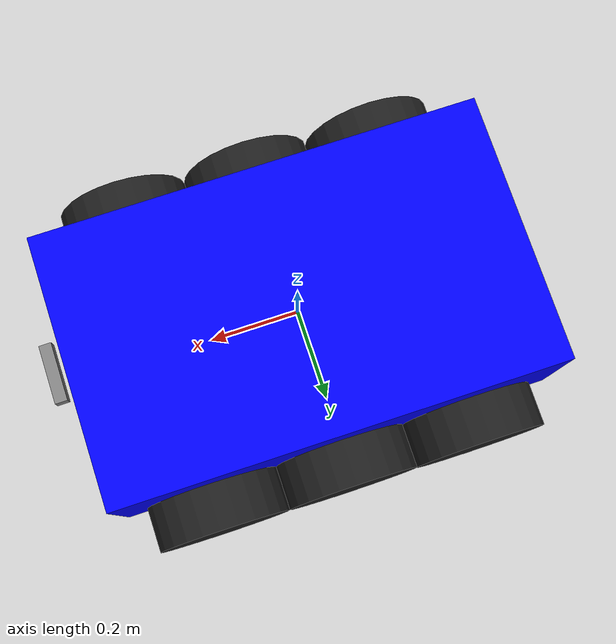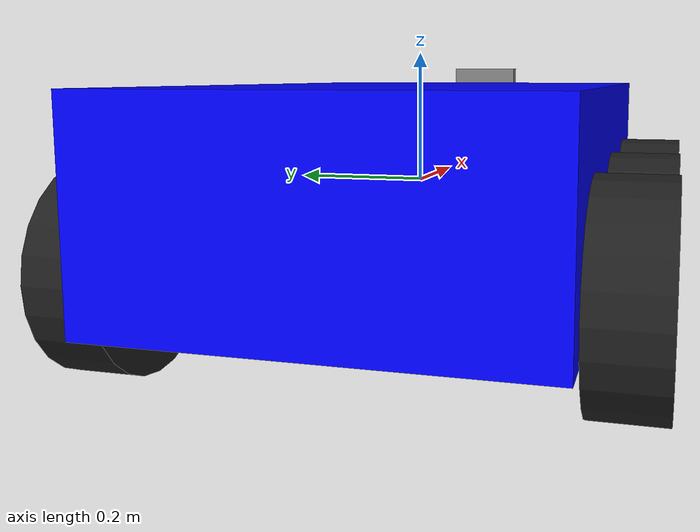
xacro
<?xml version="1.0"?>
<robot name="differential_drive_robot" xmlns:xacro="http://www.ros.org/wiki/xacro">

  <xacro:property name="body_link_x_dim" value="1"/>
  <xacro:property name="body_link_y_dim" value="0.6"/>
  <xacro:property name="body_link_z_dim" value="0.3"/>

  <xacro:property name="wheel_link_radius" value="0.15"/>
  <xacro:property name="wheel_link_length" value="0.1"/>
  <xacro:property name="wheel_link_z_location" value="-0.1"/>

  <xacro:property name="body_density" value="2710.0"/>
  <xacro:property name="wheel_density" value="2710.0"/>
  <xacro:property name="pi_const" value="3.14159265"/>

  <xacro:property name="body_mass" value="${body_density * pi_const * body_link_x_dim * body_link_y_dim * body_link_z_dim}"/>
  <xacro:property name="wheel_mass" value="${wheel_density * pi_const * wheel_link_radius * wheel_link_radius * wheel_link_length}"/>

  <xacro:property name="Iz_wheel" value="${0.5 * wheel_mass * wheel_link_radius * wheel_link_radius}" />
  <xacro:property name="I_wheel" value="${(1.0/12.0) * wheel_mass * (3.0 * wheel_link_radius * wheel_link_radius + wheel_link_length * wheel_link_length)}" />

  <xacro:macro name="inertia_wheel">
    <inertial>
      <origin rpy="0 0 0" xyz="0 0 0"/>
      <mass value="${wheel_mass}"/>
      <inertia ixx="${I_wheel}" ixy="0.0" ixz="0.0" iyy="${I_wheel}" iyz="0.0" izz="${Iz_wheel}"/>
    </inertial>
  </xacro:macro>

  <material name="blue">
    <color rgba="0 0 1 1"/>
  </material>

  <!-- Include Gazebo configurations -->
  <xacro:include filename="$(find mobile_dd_robot)/model/robot.gazebo"/>

  <!-- Include RealSense D455 camera macro -->
  <xacro:include filename="$(find mobile_dd_robot)/model/camera.xacro"/>

  <link name="body_link">
    <visual>
      <geometry>
        <box size="${body_link_x_dim} ${body_link_y_dim} ${body_link_z_dim}"/>
      </geometry>
      <origin rpy="0 0 0" xyz="0 0 0"/>
      <material name="blue"/> </visual>
    <collision>
      <geometry>
        <box size="${body_link_x_dim} ${body_link_y_dim} ${body_link_z_dim}"/>
      </geometry>
      <origin rpy="0 0 0" xyz="0 0 0"/>
    </collision>
    <inertial>
      <origin rpy="0 0 0" xyz="0 0 0"/>
      <mass value="${body_mass}"/>
      <inertia
        ixx="${(1/12)*body_mass*(body_link_y_dim*body_link_y_dim+body_link_z_dim*body_link_z_dim)}"
        ixy="0" ixz="0"
        iyy="${(1/12)*body_mass*(body_link_x_dim*body_link_x_dim+body_link_z_dim*body_link_z_dim)}"
        iyz="0"
        izz="${(1/12)*body_mass*(body_link_x_dim*body_link_x_dim+body_link_y_dim*body_link_y_dim)}"
      />
    </inertial>
  </link>

  <joint name="left_wheel_1_joint" type="continuous">
    <parent link="body_link"/>
    <child link="left_wheel_1_link"/>
    <origin xyz="-0.3 ${-body_link_y_dim/2 - wheel_link_length/2} ${wheel_link_z_location}" rpy="0 0 0"/>
    <axis xyz="0 1 0"/>
    <limit effort="1000" velocity="1000"/>
    <dynamics damping="1.0" friction="1.0"/>
  </joint>

  <link name="left_wheel_1_link">
    <visual>
      <origin rpy="1.570795 0 0" xyz="0 0 0"/>
      <geometry>
        <cylinder length="${wheel_link_length}" radius="${wheel_link_radius}"/>
      </geometry>
    </visual>
    <collision>
      <origin rpy="1.570795 0 0" xyz="0 0 0"/>
      <geometry>
        <cylinder length="${wheel_link_length}" radius="${wheel_link_radius}"/>
      </geometry>
    </collision>
    <xacro:inertia_wheel/>
  </link>

  <joint name="left_wheel_2_joint" type="continuous">
    <parent link="body_link"/>
    <child link="left_wheel_2_link"/>
    <origin xyz="0 ${-body_link_y_dim/2 - wheel_link_length/2} ${wheel_link_z_location}" rpy="0 0 0"/>
    <axis xyz="0 1 0"/>
    <limit effort="1000" velocity="1000"/>
    <dynamics damping="1.0" friction="1.0"/>
  </joint>
  <link name="left_wheel_2_link">
    <visual>
      <origin rpy="1.570795 0 0" xyz="0 0 0"/>
      <geometry>
        <cylinder length="${wheel_link_length}" radius="${wheel_link_radius}"/>
      </geometry>
    </visual>
    <collision>
      <origin rpy="1.570795 0 0" xyz="0 0 0"/>
      <geometry>
        <cylinder length="${wheel_link_length}" radius="${wheel_link_radius}"/>
      </geometry>
    </collision>
    <xacro:inertia_wheel/>
  </link>

  <joint name="left_wheel_3_joint" type="continuous">
    <parent link="body_link"/>
    <child link="left_wheel_3_link"/>
    <origin xyz="0.3 ${-body_link_y_dim/2 - wheel_link_length/2} ${wheel_link_z_location}" rpy="0 0 0"/>
    <axis xyz="0 1 0"/>
    <limit effort="1000" velocity="1000"/>
    <dynamics damping="1.0" friction="1.0"/>
  </joint>
  <link name="left_wheel_3_link">
    <visual>
      <origin rpy="1.570795 0 0" xyz="0 0 0"/>
      <geometry>
        <cylinder length="${wheel_link_length}" radius="${wheel_link_radius}"/>
      </geometry>
    </visual>
    <collision>
      <origin rpy="1.570795 0 0" xyz="0 0 0"/>
      <geometry>
        <cylinder length="${wheel_link_length}" radius="${wheel_link_radius}"/>
      </geometry>
    </collision>
    <xacro:inertia_wheel/>
  </link>

  <joint name="right_wheel_1_joint" type="continuous">
    <parent link="body_link"/>
    <child link="right_wheel_1_link"/>
    <origin xyz="-0.3 ${body_link_y_dim/2 + wheel_link_length/2} ${wheel_link_z_location}" rpy="0 0 0"/>
    <axis xyz="0 1 0"/>
    <limit effort="1000" velocity="1000"/>
    <dynamics damping="1.0" friction="1.0"/>
  </joint>
  <link name="right_wheel_1_link">
    <visual>
      <origin rpy="1.570795 0 0" xyz="0 0 0"/>
      <geometry>
        <cylinder length="${wheel_link_length}" radius="${wheel_link_radius}"/>
      </geometry>
    </visual>
    <collision>
      <origin rpy="1.570795 0 0" xyz="0 0 0"/>
      <geometry>
        <cylinder length="${wheel_link_length}" radius="${wheel_link_radius}"/>
      </geometry>
    </collision>
    <xacro:inertia_wheel/>
  </link>

  <joint name="right_wheel_2_joint" type="continuous">
    <parent link="body_link"/>
    <child link="right_wheel_2_link"/>
    <origin xyz="0 ${body_link_y_dim/2 + wheel_link_length/2} ${wheel_link_z_location}" rpy="0 0 0"/>
    <axis xyz="0 1 0"/>
    <limit effort="1000" velocity="1000"/>
    <dynamics damping="1.0" friction="1.0"/>
  </joint>
  <link name="right_wheel_2_link">
    <visual>
      <origin rpy="1.570795 0 0" xyz="0 0 0"/>
      <geometry>
        <cylinder length="${wheel_link_length}" radius="${wheel_link_radius}"/>
      </geometry>
    </visual>
    <collision>
      <origin rpy="1.570795 0 0" xyz="0 0 0"/>
      <geometry>
        <cylinder length="${wheel_link_length}" radius="${wheel_link_radius}"/>
      </geometry>
    </collision>
    <xacro:inertia_wheel/>
  </link>

  <joint name="right_wheel_3_joint" type="continuous">
    <parent link="body_link"/>
    <child link="right_wheel_3_link"/>
    <origin xyz="0.3 ${body_link_y_dim/2 + wheel_link_length/2} ${wheel_link_z_location}" rpy="0 0 0"/>
    <axis xyz="0 1 0"/>
    <limit effort="1000" velocity="1000"/>
    <dynamics damping="1.0" friction="1.0"/>
  </joint>
  <link name="right_wheel_3_link">
    <visual>
      <origin rpy="1.570795 0 0" xyz="0 0 0"/>
      <geometry>
        <cylinder length="${wheel_link_length}" radius="${wheel_link_radius}"/>
      </geometry>
    </visual>
    <collision>
      <origin rpy="1.570795 0 0" xyz="0 0 0"/>
      <geometry>
        <cylinder length="${wheel_link_length}" radius="${wheel_link_radius}"/>
      </geometry>
    </collision>
    <xacro:inertia_wheel/>
  </link>

  <!-- Add Intel RealSense D455 Camera -->
  <xacro:realsense_d455 parent_link="body_link">
    <origin xyz="${body_link_x_dim/2 + 0.02} 0 ${body_link_z_dim/2 + 0.015}" rpy="0 0 0"/>
  </xacro:realsense_d455>

</robot>

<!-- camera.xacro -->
<robot xmlns:xacro="http://www.ros.org/wiki/xacro">

  <!-- Intel RealSense D455 Camera Macro -->
  <xacro:macro name="realsense_d455" params="parent_link *origin">

    <!-- Camera properties based on D455 specifications -->
    <xacro:property name="d455_cam_width" value="0.124"/>
    <xacro:property name="d455_cam_height" value="0.029"/>
    <xacro:property name="d455_cam_depth" value="0.026"/>
    <xacro:property name="d455_cam_mass" value="0.116"/>

    <!-- Camera mounting link -->
    <link name="camera_link">
      <visual>
        <origin xyz="0 0 0" rpy="0 0 0"/>
        <geometry>
          <box size="${d455_cam_depth} ${d455_cam_width} ${d455_cam_height}"/>
        </geometry>
        <material name="camera_material">
          <color rgba="0.5 0.5 0.5 1.0"/>
        </material>
      </visual>
      <collision>
        <origin xyz="0 0 0" rpy="0 0 0"/>
        <geometry>
          <box size="${d455_cam_depth} ${d455_cam_width} ${d455_cam_height}"/>
        </geometry>
      </collision>
      <inertial>
        <mass value="${d455_cam_mass}"/>
        <origin xyz="0 0 0" rpy="0 0 0"/>
        <inertia
          ixx="1e-6" ixy="0" ixz="0"
          iyy="1e-6" iyz="0"
          izz="1e-6"/>
      </inertial>
    </link>

    <!-- Joint connecting camera to parent -->
    <joint name="camera_joint" type="fixed">
      <parent link="${parent_link}"/>
      <child link="camera_link"/>
      <xacro:insert_block name="origin"/>
    </joint>

    <!-- Optical frame for camera (ROS convention) -->
    <link name="camera_depth_frame"/>

    <joint name="camera_depth_joint" type="fixed">
      <parent link="camera_link"/>
      <child link="camera_depth_frame"/>
      <origin xyz="0 0 0" rpy="${-pi/2} 0 ${-pi/2}"/>
    </joint>

    <!-- RGB camera optical frame -->
    <link name="camera_color_frame"/>

    <joint name="camera_color_joint" type="fixed">
      <parent link="camera_link"/>
      <child link="camera_color_frame"/>
      <origin xyz="0 0 0" rpy="${-pi/2} 0 ${-pi/2}"/>
    </joint>

    <!-- Gazebo plugin for RealSense D455 -->
    <gazebo reference="camera_link">
      <sensor name="d455_camera" type="depth">
        <update_rate>30</update_rate>
        <camera>
          <horizontal_fov>1.5009</horizontal_fov>
          <image>
            <width>1280</width>
            <height>720</height>
            <format>R8G8B8</format>
          </image>
          <clip>
            <near>0.1</near>
            <far>10.0</far>
          </clip>
          <noise>
            <type>gaussian</type>
            <mean>0.0</mean>
            <stddev>0.007</stddev>
          </noise>
        </camera>
        <plugin name="camera_controller" filename="libgazebo_ros_camera.so">
          <ros>
            <namespace>/camera</namespace>
            <remapping>~/image_raw:=color/image_raw</remapping>
            <remapping>~/camera_info:=color/camera_info</remapping>
          </ros>
          <camera_name>d455</camera_name>
          <frame_name>camera_color_frame</frame_name>
          <hack_baseline>0.07</hack_baseline>
        </plugin>
      </sensor>

      <!-- Depth camera sensor -->
      <sensor name="d455_depth" type="depth">
        <update_rate>30</update_rate>
        <camera>
          <horizontal_fov>1.5009</horizontal_fov>
          <image>
            <width>1280</width>
            <height>720</height>
          </image>
          <clip>
            <near>0.1</near>
            <far>10.0</far>
          </clip>
          <noise>
            <type>gaussian</type>
            <mean>0.0</mean>
            <stddev>0.1</stddev>
          </noise>
        </camera>
        <plugin name="depth_camera_controller" filename="libgazebo_ros_camera.so">
          <ros>
            <namespace>/camera</namespace>
            <remapping>~/image_raw:=depth/image_rect_raw</remapping>
            <remapping>~/camera_info:=depth/camera_info</remapping>
            <remapping>~/points:=depth/color/points</remapping>
          </ros>
          <camera_name>d455</camera_name>
          <frame_name>camera_depth_frame</frame_name>
          <hack_baseline>0.07</hack_baseline>
          <min_depth>0.1</min_depth>
          <max_depth>10.0</max_depth>
        </plugin>
      </sensor>

      <material>Gazebo/Gray</material>
    </gazebo>

  </xacro:macro>

</robot>
